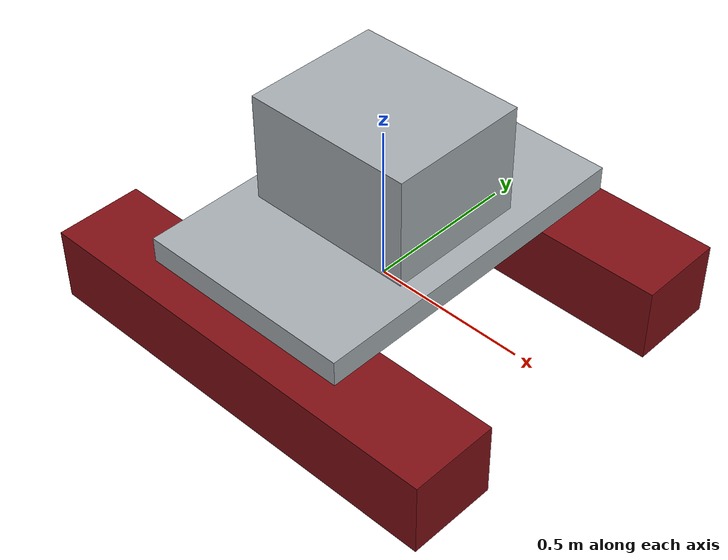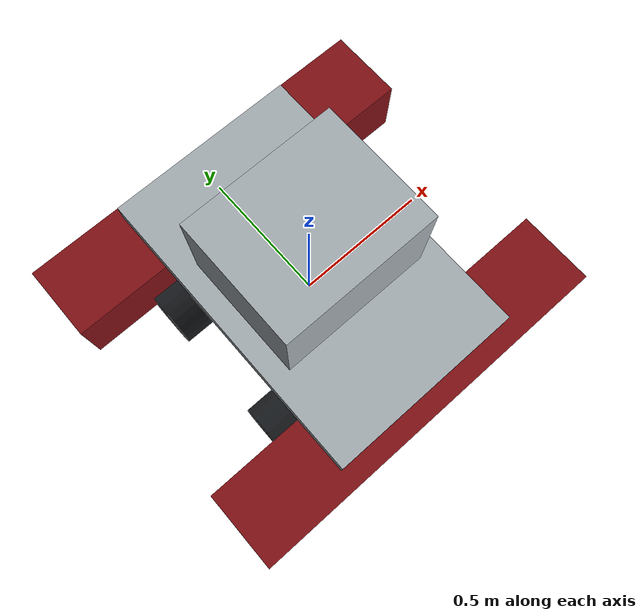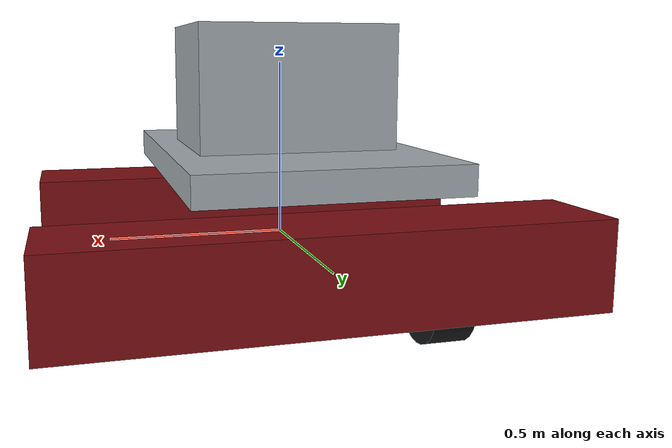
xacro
<?xml version="1.0"?>
<robot xmlns:xacro="http://www.ros.org/wiki/xacro" name="tlu_asv">
  <!--
    ROS body convention: X forward, Y left / port, Z up.
    Starter physical values must be replaced with measured/CAD values.
  -->
  <xacro:arg name="use_mesh" default="false"/>
  <xacro:arg name="mesh_file" default="asv_visual.obj"/>
  <xacro:arg name="mesh_scale" default="0.001"/>
  <xacro:arg name="mesh_x" default="0.0"/>
  <xacro:arg name="mesh_y" default="0.0"/>
  <xacro:arg name="mesh_z" default="0.0"/>
  <xacro:arg name="mesh_roll" default="0.0"/>
  <xacro:arg name="mesh_pitch" default="0.0"/>
  <!-- Fusion model is Y-long; rotate it so its long axis follows ROS X. -->
  <xacro:arg name="mesh_yaw" default="1.57079632679"/>

  <xacro:arg name="mass" default="35.0"/>
  <xacro:arg name="cog_z" default="-0.16"/>
  <xacro:arg name="inertia_xx" default="5.0"/>
  <xacro:arg name="inertia_yy" default="8.0"/>
  <xacro:arg name="inertia_zz" default="12.0"/>
  <xacro:arg name="pontoon_length" default="1.40"/>
  <xacro:arg name="pontoon_width" default="0.28"/>
  <xacro:arg name="pontoon_height" default="0.24"/>
  <xacro:arg name="pontoon_offset_y" default="0.48"/>
  <xacro:arg name="thruster_x" default="-0.38"/>
  <xacro:arg name="thruster_offset_y" default="0.29"/>
  <!-- Keep the thrust line through the CoG to avoid an artificial pitch-up. -->
  <xacro:arg name="thruster_z" default="-0.16"/>
  <xacro:arg name="current_x" default="0.2165"/>
  <xacro:arg name="current_y" default="0.1250"/>
  <xacro:arg name="current_z" default="0.0"/>

  <xacro:property name="mass" value="$(arg mass)"/>
  <xacro:property name="pontoon_length" value="$(arg pontoon_length)"/>
  <xacro:property name="pontoon_width" value="$(arg pontoon_width)"/>
  <xacro:property name="pontoon_height" value="$(arg pontoon_height)"/>
  <xacro:property name="pontoon_offset_y" value="$(arg pontoon_offset_y)"/>
  <xacro:property name="thruster_x" value="$(arg thruster_x)"/>
  <xacro:property name="thruster_offset_y" value="$(arg thruster_offset_y)"/>
  <xacro:property name="thruster_z" value="$(arg thruster_z)"/>

  <material name="hull_red">
    <color rgba="0.50 0.06 0.08 1.0"/>
  </material>
  <material name="frame_gray">
    <color rgba="0.65 0.68 0.70 1.0"/>
  </material>
  <material name="thruster_dark">
    <color rgba="0.08 0.09 0.10 1.0"/>
  </material>

  <!-- KDL expects the root link to have no inertia. -->
  <link name="base_footprint"/>
  <joint name="base_footprint_joint" type="fixed">
    <parent link="base_footprint"/>
    <child link="base_link"/>
    <origin xyz="0 0 0" rpy="0 0 0"/>
  </joint>

  <link name="base_link">
    <inertial>
      <origin xyz="0 0 $(arg cog_z)" rpy="0 0 0"/>
      <mass value="${mass}"/>
      <inertia
        ixx="$(arg inertia_xx)" ixy="0.0" ixz="0.0"
        iyy="$(arg inertia_yy)" iyz="0.0" izz="$(arg inertia_zz)"/>
    </inertial>

    <!-- Stable primitive collision volumes; these also drive buoyancy. -->
    <collision name="port_pontoon_collision">
      <origin xyz="0 ${pontoon_offset_y} 0" rpy="0 0 0"/>
      <geometry>
        <box size="${pontoon_length} ${pontoon_width} ${pontoon_height}"/>
      </geometry>
    </collision>
    <collision name="starboard_pontoon_collision">
      <origin xyz="0 -${pontoon_offset_y} 0" rpy="0 0 0"/>
      <geometry>
        <box size="${pontoon_length} ${pontoon_width} ${pontoon_height}"/>
      </geometry>
    </collision>

    <!-- A combined assembly STL exported from Fusion 360. -->
    <xacro:if value="$(arg use_mesh)">
      <visual name="fusion_assembly_visual">
        <origin
          xyz="$(arg mesh_x) $(arg mesh_y) $(arg mesh_z)"
          rpy="$(arg mesh_roll) $(arg mesh_pitch) $(arg mesh_yaw)"/>
        <geometry>
          <mesh
            filename="package://asv_description/meshes/visual/$(arg mesh_file)"
            scale="$(arg mesh_scale) $(arg mesh_scale) $(arg mesh_scale)"/>
        </geometry>
      </visual>
    </xacro:if>

    <!-- Primitive preview lets Gazebo run before the STL is available. -->
    <xacro:unless value="$(arg use_mesh)">
      <visual name="port_pontoon_visual">
        <origin xyz="0 ${pontoon_offset_y} 0" rpy="0 0 0"/>
        <geometry>
          <box size="${pontoon_length} ${pontoon_width} ${pontoon_height}"/>
        </geometry>
        <material name="hull_red"/>
      </visual>
      <visual name="starboard_pontoon_visual">
        <origin xyz="0 -${pontoon_offset_y} 0" rpy="0 0 0"/>
        <geometry>
          <box size="${pontoon_length} ${pontoon_width} ${pontoon_height}"/>
        </geometry>
        <material name="hull_red"/>
      </visual>
      <visual name="cross_beam_visual">
        <origin xyz="0 0 0.22" rpy="0 0 0"/>
        <geometry>
          <box size="0.70 1.10 0.08"/>
        </geometry>
        <material name="frame_gray"/>
      </visual>
      <visual name="electronics_box_visual">
        <origin xyz="0 0 0.43" rpy="0 0 0"/>
        <geometry>
          <box size="0.55 0.45 0.35"/>
        </geometry>
        <material name="frame_gray"/>
      </visual>
      <visual name="port_thruster_visual">
        <origin xyz="${thruster_x} ${thruster_offset_y} ${thruster_z}" rpy="0 1.57079632679 0"/>
        <geometry>
          <cylinder radius="0.12" length="0.12"/>
        </geometry>
        <material name="thruster_dark"/>
      </visual>
      <visual name="starboard_thruster_visual">
        <origin xyz="${thruster_x} -${thruster_offset_y} ${thruster_z}" rpy="0 1.57079632679 0"/>
        <geometry>
          <cylinder radius="0.12" length="0.12"/>
        </geometry>
        <material name="thruster_dark"/>
      </visual>
    </xacro:unless>
  </link>

  <link name="imu_link"/>
  <joint name="imu_joint" type="fixed">
    <parent link="base_link"/>
    <child link="imu_link"/>
    <origin xyz="0 0 0.46" rpy="0 0 0"/>
  </joint>

  <link name="gps_link"/>
  <joint name="gps_joint" type="fixed">
    <parent link="base_link"/>
    <child link="gps_link"/>
    <origin xyz="0 0 0.82" rpy="0 0 0"/>
  </joint>

  <link name="lidar_link"/>
  <joint name="lidar_joint" type="fixed">
    <parent link="base_link"/>
    <child link="lidar_link"/>
    <origin xyz="0.35 0 0.52" rpy="0 0 0"/>
  </joint>

  <link name="sonar_link"/>
  <joint name="sonar_joint" type="fixed">
    <parent link="base_link"/>
    <child link="sonar_link"/>
    <origin xyz="0.55 0 0.20" rpy="0 0 0"/>
  </joint>

  <!-- Mass-light propeller links give Gazebo local X axes for thrust. -->
  <link name="port_thruster_link">
    <inertial>
      <mass value="0.01"/>
      <inertia ixx="0.00001" ixy="0" ixz="0"
               iyy="0.00001" iyz="0" izz="0.00001"/>
    </inertial>
  </link>
  <joint name="port_thruster_joint" type="continuous">
    <parent link="base_link"/>
    <child link="port_thruster_link"/>
    <origin xyz="${thruster_x} ${thruster_offset_y} ${thruster_z}"
            rpy="0 0 3.14159265359"/>
    <axis xyz="1 0 0"/>
    <limit effort="100" velocity="500"/>
    <dynamics damping="0.01" friction="0.0"/>
  </joint>

  <link name="starboard_thruster_link">
    <inertial>
      <mass value="0.01"/>
      <inertia ixx="0.00001" ixy="0" ixz="0"
               iyy="0.00001" iyz="0" izz="0.00001"/>
    </inertial>
  </link>
  <joint name="starboard_thruster_joint" type="continuous">
    <parent link="base_link"/>
    <child link="starboard_thruster_link"/>
    <origin xyz="${thruster_x} -${thruster_offset_y} ${thruster_z}"
            rpy="0 0 3.14159265359"/>
    <axis xyz="1 0 0"/>
    <limit effort="100" velocity="500"/>
    <dynamics damping="0.01" friction="0.0"/>
  </joint>

  <gazebo reference="base_link">
    <mu1>0.05</mu1>
    <mu2>0.05</mu2>
  </gazebo>

  <gazebo reference="imu_link">
    <sensor name="asv_imu" type="imu">
      <topic>/asv/imu/data</topic>
      <frame_id>imu_link</frame_id>
      <update_rate>50</update_rate>
      <always_on>true</always_on>
      <imu>
        <orientation_reference_frame>
          <localization>ENU</localization>
        </orientation_reference_frame>
        <angular_velocity>
          <x><noise type="gaussian"><stddev>0.0002</stddev></noise></x>
          <y><noise type="gaussian"><stddev>0.0002</stddev></noise></y>
          <z><noise type="gaussian"><stddev>0.0002</stddev></noise></z>
        </angular_velocity>
        <linear_acceleration>
          <x><noise type="gaussian"><stddev>0.017</stddev></noise></x>
          <y><noise type="gaussian"><stddev>0.017</stddev></noise></y>
          <z><noise type="gaussian"><stddev>0.017</stddev></noise></z>
        </linear_acceleration>
      </imu>
    </sensor>
  </gazebo>

  <gazebo reference="gps_link">
    <sensor name="asv_gps" type="navsat">
      <topic>/asv/gps/fix_raw</topic>
      <frame_id>gps_link</frame_id>
      <update_rate>10</update_rate>
      <always_on>true</always_on>
    </sensor>
  </gazebo>

  <gazebo reference="lidar_link">
    <sensor name="asv_lidar" type="gpu_lidar">
      <topic>/asv/lidar/scan</topic>
      <frame_id>lidar_link</frame_id>
      <update_rate>10</update_rate>
      <always_on>true</always_on>
      <visualize>true</visualize>
      <lidar>
        <scan>
          <horizontal>
            <samples>720</samples>
            <resolution>1</resolution>
            <min_angle>-3.14159265359</min_angle>
            <max_angle>3.14159265359</max_angle>
          </horizontal>
        </scan>
        <range>
          <min>0.15</min>
          <max>30.0</max>
          <resolution>0.01</resolution>
        </range>
        <noise>
          <type>gaussian</type>
          <mean>0.0</mean>
          <stddev>0.01</stddev>
        </noise>
      </lidar>
    </sensor>
  </gazebo>

  <gazebo reference="sonar_link">
    <sensor name="asv_front_sonar" type="gpu_lidar">
      <topic>/asv/sonar/scan</topic>
      <frame_id>sonar_link</frame_id>
      <update_rate>15</update_rate>
      <always_on>true</always_on>
      <visualize>false</visualize>
      <lidar>
        <scan>
          <horizontal>
            <samples>9</samples>
            <resolution>1</resolution>
            <min_angle>-0.2617993878</min_angle>
            <max_angle>0.2617993878</max_angle>
          </horizontal>
        </scan>
        <range>
          <min>0.20</min>
          <max>12.0</max>
          <resolution>0.01</resolution>
        </range>
        <noise>
          <type>gaussian</type>
          <mean>0.0</mean>
          <stddev>0.02</stddev>
        </noise>
      </lidar>
    </sensor>
  </gazebo>

  <gazebo>
    <plugin filename="gz-sim-odometry-publisher-system"
            name="gz::sim::systems::OdometryPublisher">
      <odom_topic>/model/asv/odometry</odom_topic>
      <odom_frame>odom</odom_frame>
      <robot_base_frame>base_footprint</robot_base_frame>
      <odom_publish_frequency>30</odom_publish_frequency>
      <dimensions>3</dimensions>
    </plugin>
    <plugin filename="gz-sim-thruster-system"
            name="gz::sim::systems::Thruster">
      <namespace>asv</namespace>
      <joint_name>port_thruster_joint</joint_name>
      <use_angvel_cmd>false</use_angvel_cmd>
      <fluid_density>1025</fluid_density>
      <propeller_diameter>0.10</propeller_diameter>
      <thrust_coefficient>0.10</thrust_coefficient>
      <min_thrust_cmd>-25</min_thrust_cmd>
      <max_thrust_cmd>15</max_thrust_cmd>
      <deadband>0.05</deadband>
    </plugin>
    <plugin filename="gz-sim-thruster-system"
            name="gz::sim::systems::Thruster">
      <namespace>asv</namespace>
      <joint_name>starboard_thruster_joint</joint_name>
      <use_angvel_cmd>false</use_angvel_cmd>
      <fluid_density>1025</fluid_density>
      <propeller_diameter>0.10</propeller_diameter>
      <thrust_coefficient>0.10</thrust_coefficient>
      <min_thrust_cmd>-25</min_thrust_cmd>
      <max_thrust_cmd>15</max_thrust_cmd>
      <deadband>0.05</deadband>
    </plugin>
  </gazebo>

  <!-- Damping only; added-mass terms wait for physical calibration. -->
  <gazebo>
    <plugin filename="gz-sim-hydrodynamics-system"
            name="gz::sim::systems::Hydrodynamics">
      <!-- Fixed-joint reduction merges base_link into this canonical link. -->
      <link_name>base_footprint</link_name>
      <!--
        Gazebo applies damping against this world-ENU water velocity. The
        current simulator updates /model/asv/ocean_current at runtime.
      -->
      <namespace>asv</namespace>
      <default_current>$(arg current_x) $(arg current_y) $(arg current_z)</default_current>
      <xU>-5.0</xU>
      <xUabsU>-8.0</xUabsU>
      <yV>-15.0</yV>
      <yVabsV>-30.0</yVabsV>
      <zW>-20.0</zW>
      <zWabsW>-40.0</zWabsW>
      <kP>-4.0</kP>
      <mQ>-8.0</mQ>
      <nR>-15.0</nR>
      <nRabsR>-20.0</nRabsR>
    </plugin>
  </gazebo>
</robot>
